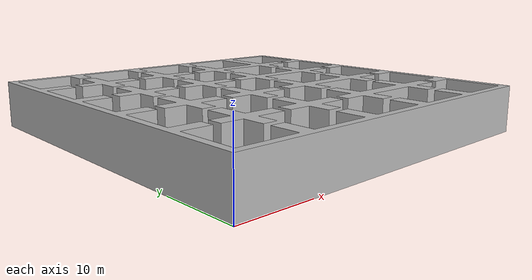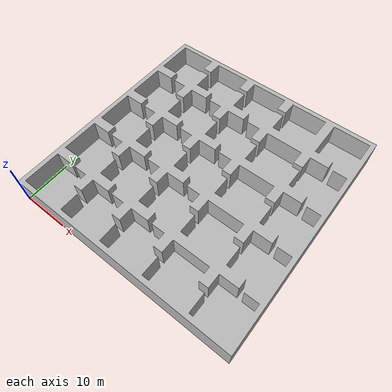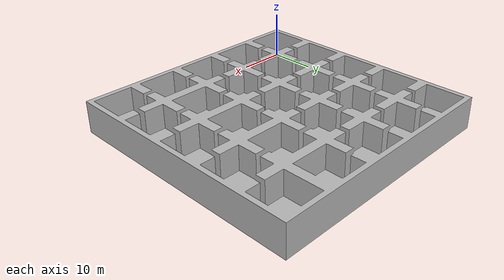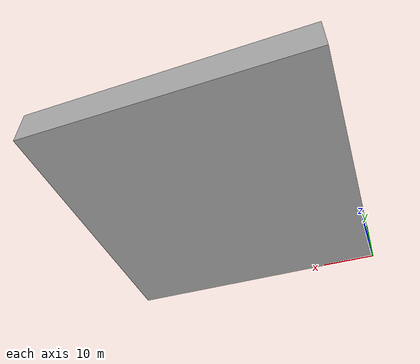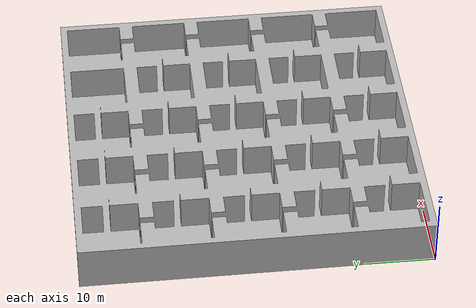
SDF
<?xml version='1.0' ?><sdf version='1.6'><model name='rooms1_2022-02-23_23:12:47.518677'><static>true</static><link name='link'><pose>0 0 0 0 0 0</pose><collision name='collision'><geometry><mesh><uri>model://rooms1_2022-02-23_23:12:47.518677/rooms1_2022-02-23_23:12:47.518677.stl</uri></mesh></geometry></collision><visual name='visual'><geometry><mesh><uri>model://rooms1_2022-02-23_23:12:47.518677/rooms1_2022-02-23_23:12:47.518677.stl</uri></mesh></geometry></visual></link></model></sdf>
